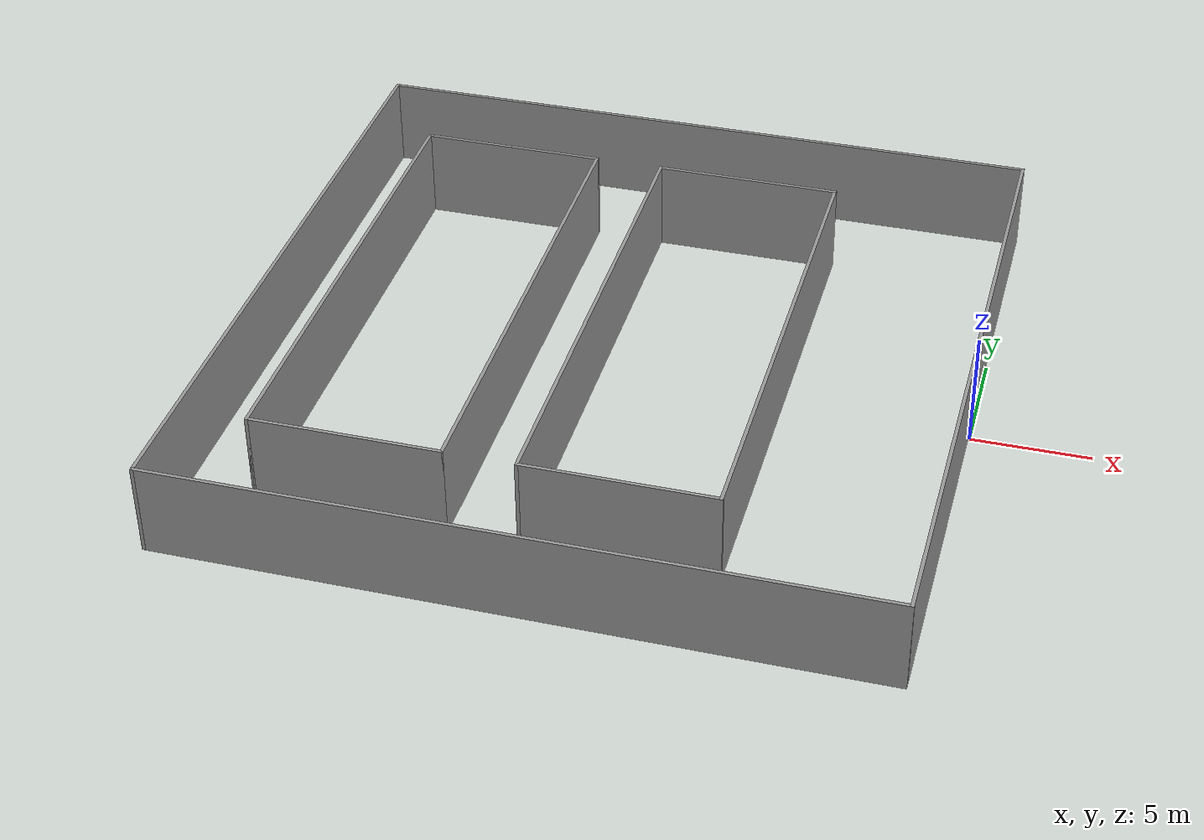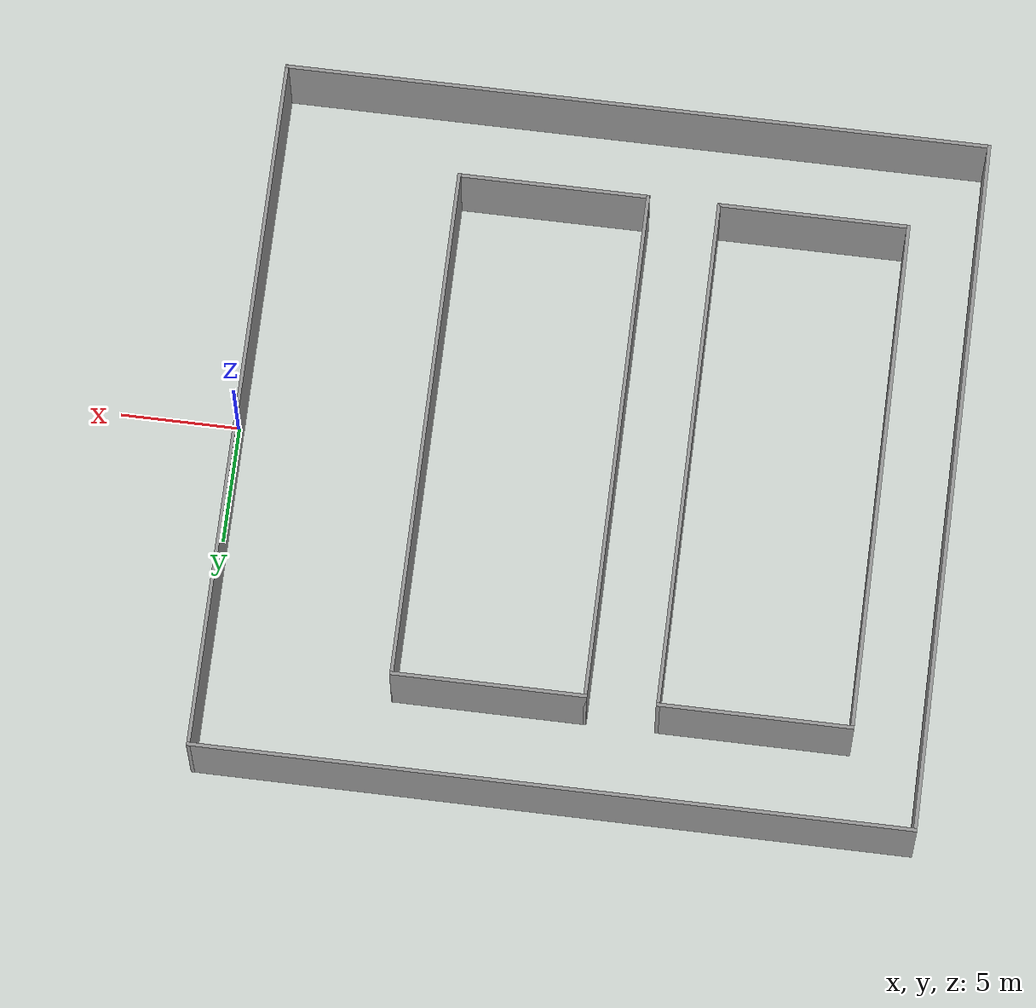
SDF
<?xml version='1.0'?>
<sdf version='1.7'>
  <model name='hospital_wall'>
    <pose>-15.0375 0 0 0 -0 0</pose>
    <link name='Wall_10'>
      <collision name='Wall_10_Collision'>
        <geometry>
          <box>
            <size>30.15 0.15 4</size>
          </box>
        </geometry>
        <pose>0 0 2 0 -0 0</pose>
      </collision>
      <visual name='Wall_10_Visual'>
        <pose>0 0 2 0 -0 0</pose>
        <geometry>
          <box>
            <size>30.15 0.15 4</size>
          </box>
        </geometry>
        <material>
          <script>
            <uri>file://media/materials/scripts/gazebo.material</uri>
            <name>Gazebo/Grey</name>
          </script>
          <ambient>1 1 1 1</ambient>
        </material>
        <meta>
          <layer>0</layer>
        </meta>
      </visual>
      <pose>-14.9625 0 0 0 -0 1.5708</pose>
    </link>
    <link name='Wall_12'>
      <collision name='Wall_12_Collision'>
        <geometry>
          <box>
            <size>22.15 0.15 4</size>
          </box>
        </geometry>
        <pose>0 0 2 0 -0 0</pose>
      </collision>
      <visual name='Wall_12_Visual'>
        <pose>0 0 2 0 -0 0</pose>
        <geometry>
          <box>
            <size>22.15 0.15 4</size>
          </box>
        </geometry>
        <material>
          <script>
            <uri>file://media/materials/scripts/gazebo.material</uri>
            <name>Gazebo/Grey</name>
          </script>
          <ambient>1 1 1 1</ambient>
        </material>
        <meta>
          <layer>0</layer>
        </meta>
      </visual>
      <pose>7.0375 0 0 0 -0 -1.5708</pose>
    </link>
    <link name='Wall_13'>
      <collision name='Wall_13_Collision'>
        <geometry>
          <box>
            <size>8.15 0.15 4</size>
          </box>
        </geometry>
        <pose>0 0 2 0 -0 0</pose>
      </collision>
      <visual name='Wall_13_Visual'>
        <pose>0 0 2 0 -0 0</pose>
        <geometry>
          <box>
            <size>8.15 0.15 4</size>
          </box>
        </geometry>
        <material>
          <script>
            <uri>file://media/materials/scripts/gazebo.material</uri>
            <name>Gazebo/Grey</name>
          </script>
          <ambient>1 1 1 1</ambient>
        </material>
        <meta>
          <layer>0</layer>
        </meta>
      </visual>
      <pose>3.0375 -11 0 0 -0 3.14159</pose>
    </link>
    <link name='Wall_14'>
      <collision name='Wall_14_Collision'>
        <geometry>
          <box>
            <size>22.15 0.15 4</size>
          </box>
        </geometry>
        <pose>0 0 2 0 -0 0</pose>
      </collision>
      <visual name='Wall_14_Visual'>
        <pose>0 0 2 0 -0 0</pose>
        <geometry>
          <box>
            <size>22.15 0.15 4</size>
          </box>
        </geometry>
        <material>
          <script>
            <uri>file://media/materials/scripts/gazebo.material</uri>
            <name>Gazebo/Grey</name>
          </script>
          <ambient>1 1 1 1</ambient>
        </material>
        <meta>
          <layer>0</layer>
        </meta>
      </visual>
      <pose>-0.962499 0 0 0 -0 1.5708</pose>
    </link>
    <link name='Wall_15'>
      <collision name='Wall_15_Collision'>
        <geometry>
          <box>
            <size>8.15 0.15 4</size>
          </box>
        </geometry>
        <pose>0 0 2 0 -0 0</pose>
      </collision>
      <visual name='Wall_15_Visual'>
        <pose>0 0 2 0 -0 0</pose>
        <geometry>
          <box>
            <size>8.15 0.15 4</size>
          </box>
        </geometry>
        <material>
          <script>
            <uri>file://media/materials/scripts/gazebo.material</uri>
            <name>Gazebo/Grey</name>
          </script>
          <ambient>1 1 1 1</ambient>
        </material>
        <meta>
          <layer>0</layer>
        </meta>
      </visual>
      <pose>3.0375 11 0 0 -0 0</pose>
    </link>
    <link name='Wall_17'>
      <collision name='Wall_17_Collision'>
        <geometry>
          <box>
            <size>22.15 0.15 4</size>
          </box>
        </geometry>
        <pose>0 0 2 0 -0 0</pose>
      </collision>
      <visual name='Wall_17_Visual'>
        <pose>0 0 2 0 -0 0</pose>
        <geometry>
          <box>
            <size>22.15 0.15 4</size>
          </box>
        </geometry>
        <material>
          <script>
            <uri>file://media/materials/scripts/gazebo.material</uri>
            <name>Gazebo/Grey</name>
          </script>
          <ambient>1 1 1 1</ambient>
        </material>
        <meta>
          <layer>0</layer>
        </meta>
      </visual>
      <pose>-11.9625 0 0 0 -0 -1.5708</pose>
    </link>
    <link name='Wall_18'>
      <collision name='Wall_18_Collision'>
        <geometry>
          <box>
            <size>8.15 0.15 4</size>
          </box>
        </geometry>
        <pose>0 0 2 0 -0 0</pose>
      </collision>
      <visual name='Wall_18_Visual'>
        <pose>0 0 2 0 -0 0</pose>
        <geometry>
          <box>
            <size>8.15 0.15 4</size>
          </box>
        </geometry>
        <material>
          <script>
            <uri>file://media/materials/scripts/gazebo.material</uri>
            <name>Gazebo/Grey</name>
          </script>
          <ambient>1 1 1 1</ambient>
        </material>
        <meta>
          <layer>0</layer>
        </meta>
      </visual>
      <pose>-7.9625 -11 0 0 -0 0</pose>
    </link>
    <link name='Wall_19'>
      <collision name='Wall_19_Collision'>
        <geometry>
          <box>
            <size>22.15 0.15 4</size>
          </box>
        </geometry>
        <pose>0 0 2 0 -0 0</pose>
      </collision>
      <visual name='Wall_19_Visual'>
        <pose>0 0 2 0 -0 0</pose>
        <geometry>
          <box>
            <size>22.15 0.15 4</size>
          </box>
        </geometry>
        <material>
          <script>
            <uri>file://media/materials/scripts/gazebo.material</uri>
            <name>Gazebo/Grey</name>
          </script>
          <ambient>1 1 1 1</ambient>
        </material>
        <meta>
          <layer>0</layer>
        </meta>
      </visual>
      <pose>-3.9625 0 0 0 -0 1.5708</pose>
    </link>
    <link name='Wall_2'>
      <collision name='Wall_2_Collision'>
        <geometry>
          <box>
            <size>30 0.15 4</size>
          </box>
        </geometry>
        <pose>0 0 2 0 -0 0</pose>
      </collision>
      <visual name='Wall_2_Visual'>
        <pose>0 0 2 0 -0 0</pose>
        <geometry>
          <box>
            <size>30 0.15 4</size>
          </box>
        </geometry>
        <material>
          <script>
            <uri>file://media/materials/scripts/gazebo.material</uri>
            <name>Gazebo/Grey</name>
          </script>
          <ambient>1 1 1 1</ambient>
        </material>
        <meta>
          <layer>0</layer>
        </meta>
      </visual>
      <pose>-0.037498 15 0 0 -0 3.14159</pose>
    </link>
    <link name='Wall_20'>
      <collision name='Wall_20_Collision'>
        <geometry>
          <box>
            <size>8.15 0.15 4</size>
          </box>
        </geometry>
        <pose>0 0 2 0 -0 0</pose>
      </collision>
      <visual name='Wall_20_Visual'>
        <pose>0 0 2 0 -0 0</pose>
        <geometry>
          <box>
            <size>8.15 0.15 4</size>
          </box>
        </geometry>
        <material>
          <script>
            <uri>file://media/materials/scripts/gazebo.material</uri>
            <name>Gazebo/Grey</name>
          </script>
          <ambient>1 1 1 1</ambient>
        </material>
        <meta>
          <layer>0</layer>
        </meta>
      </visual>
      <pose>-7.9625 11 0 0 -0 3.14159</pose>
    </link>
    <link name='Wall_8'>
      <collision name='Wall_8_Collision'>
        <geometry>
          <box>
            <size>30.15 0.15 4</size>
          </box>
        </geometry>
        <pose>0 0 2 0 -0 0</pose>
      </collision>
      <visual name='Wall_8_Visual'>
        <pose>0 0 2 0 -0 0</pose>
        <geometry>
          <box>
            <size>30.15 0.15 4</size>
          </box>
        </geometry>
        <material>
          <script>
            <uri>file://media/materials/scripts/gazebo.material</uri>
            <name>Gazebo/Grey</name>
          </script>
          <ambient>1 1 1 1</ambient>
        </material>
        <meta>
          <layer>0</layer>
        </meta>
      </visual>
      <pose>14.8875 0 0 0 -0 -1.5708</pose>
    </link>
    <link name='Wall_9'>
      <collision name='Wall_9_Collision'>
        <geometry>
          <box>
            <size>30 0.15 4</size>
          </box>
        </geometry>
        <pose>0 0 2 0 -0 0</pose>
      </collision>
      <visual name='Wall_9_Visual'>
        <pose>0 0 2 0 -0 0</pose>
        <geometry>
          <box>
            <size>30 0.15 4</size>
          </box>
        </geometry>
        <material>
          <script>
            <uri>file://media/materials/scripts/gazebo.material</uri>
            <name>Gazebo/Grey</name>
          </script>
          <ambient>1 1 1 1</ambient>
        </material>
        <meta>
          <layer>0</layer>
        </meta>
      </visual>
      <pose>-0.037498 -15 0 0 -0 3.14159</pose>
    </link>
    <static>1</static>
  </model>
</sdf>
